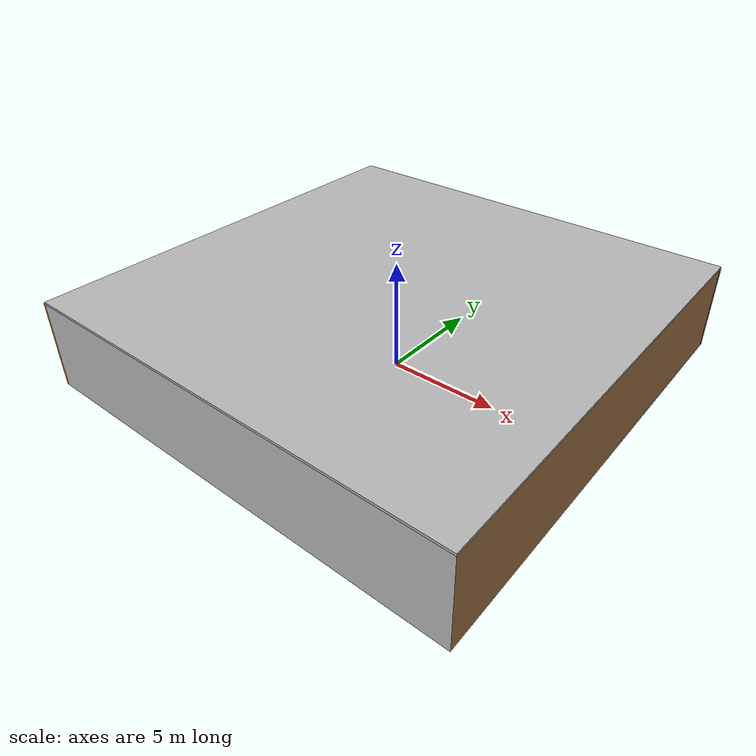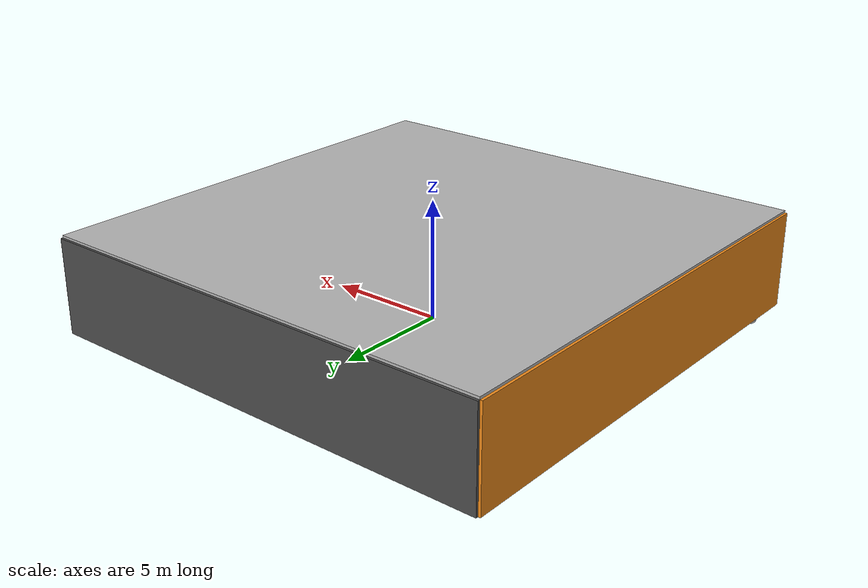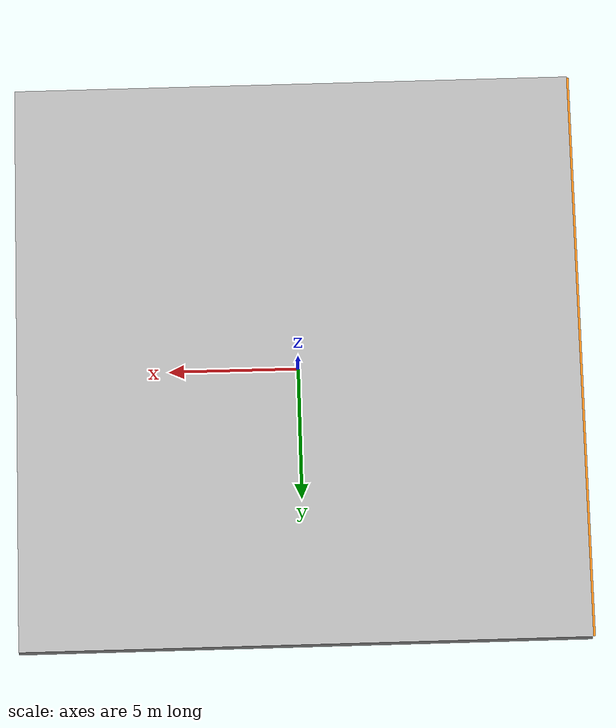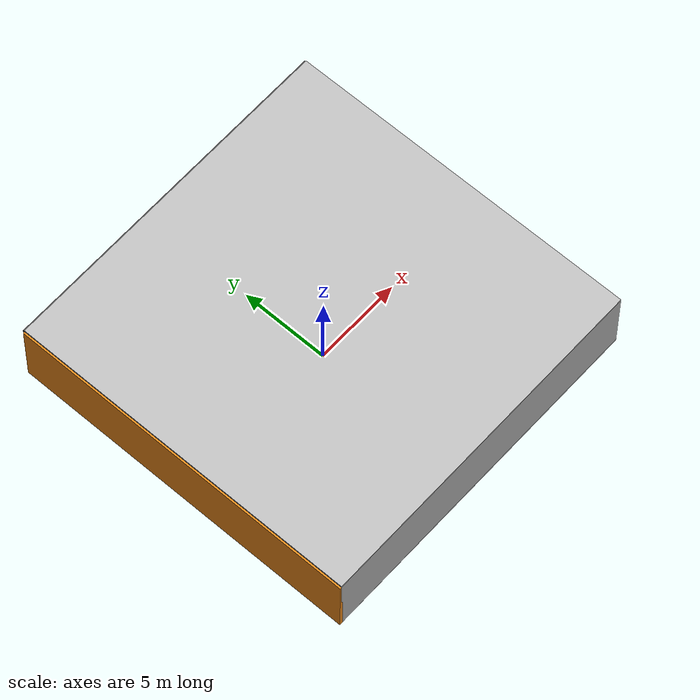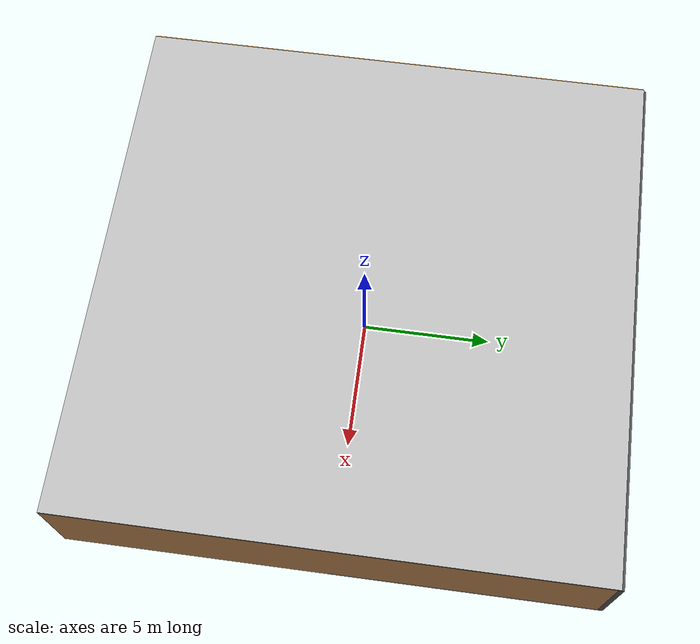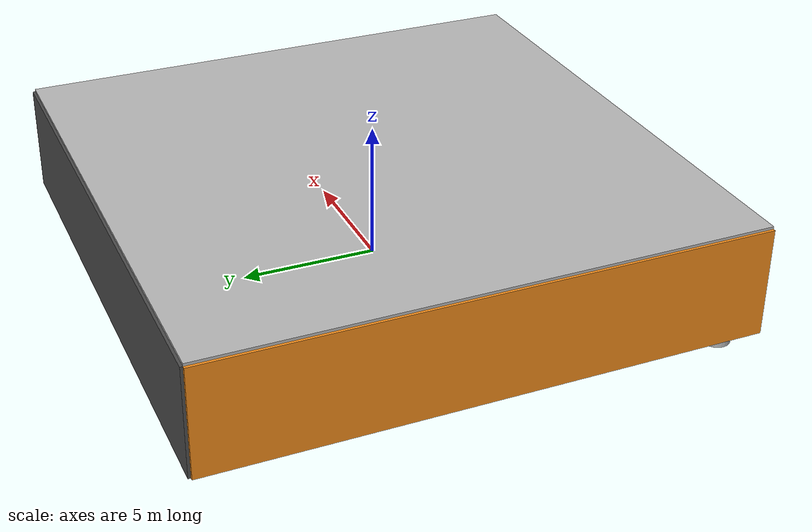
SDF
<sdf version="1.4">
 <world name="default">
  <physics type="ode">
   <max_step_size>0.001</max_step_size>
   <real_time_factor>1</real_time_factor>
   <real_time_update_rate>1000</real_time_update_rate>
   <gravity>0 0 -9.8</gravity>
  </physics>
  <scene><ambient>0.4 0.4 0.4 1</ambient><background>0.7 0.7 0.7 1</background><shadows>1</shadows></scene>
  <model name="Surrounding">
   <static>1</static>
   <link name="Ceiling">
    <collision name="Ceiling_Collision"><geometry><box><size>20 20 0.1</size></box></geometry></collision>
    <visual name="Ceiling_Visual">
     <geometry><box><size>20 20 0.1</size></box></geometry>
     <material>
      <script><uri>file://media/materials/scripts/gazebo.material</uri><name>Gazebo/CloudySky</name></script>
     </material>
    </visual>
    <pose>0 0 4.05 0 0 0</pose>
   </link>
   <link name="Wall_South">
    <collision name="Wall_South_Collision">
     <geometry><box><size>20 0 4</size></box></geometry>
     <pose>0 0 2 0 -0 0</pose>
    </collision>
    <visual name="Wall_South_Visual">
     <pose>0 0 2 0 -0 0</pose>
     <geometry><box><size>20 0 4</size></box></geometry>
     <material>
      <script><uri>file://media/materials/scripts/gazebo.material</uri><name>Gazebo/JointAnchor</name></script>
     </material>
    </visual>
    <velocity_decay><linear>0</linear><angular>0</angular></velocity_decay>
    <pose>0 -10 0 0 -0 0</pose>
   </link>
   <link name="Wall_East">
    <collision name="Wall_21_Collision">
     <geometry><box><size>20 0 4</size></box></geometry>
     <pose>0 0 2 0 -0 0</pose>
    </collision>
    <visual name="Wall_21_Visual">
     <pose>0 0 2 0 -0 0</pose>
     <geometry><box><size>20 0 4</size></box></geometry>
     <material>
      <script><uri>file://media/materials/scripts/gazebo.material</uri><name>Gazebo/WoodPallet</name></script>
     </material>
    </visual>
    <velocity_decay><linear>0</linear><angular>0</angular></velocity_decay>
    <pose>10 0 0 0 -0 1.5708</pose>
   </link>
   <link name="Wall_North">
    <collision name="Wall_22_Collision">
     <geometry><box><size>20 0.2 4</size></box></geometry>
     <pose>0 0 2 0 -0 0</pose>
    </collision>
    <visual name="Wall_22_Visual">
     <pose>0 0 2 0 -0 0</pose>
     <geometry><box><size>20 0.2 4</size></box></geometry>
     <material>
      <script><uri>file://media/materials/scripts/gazebo.material</uri><name>Gazebo/DarkGrey</name></script>
     </material>
    </visual>
    <velocity_decay><linear>0</linear><angular>0</angular></velocity_decay>
    <pose>0 10 0 0 -0 0</pose>
   </link>
   <link name="Wall_West">
    <collision name="Wall_23_Collision">
     <geometry><box><size>20 0.2 4</size></box></geometry>
     <pose>0 0 2 0 -0 0</pose>
    </collision>
    <visual name="Wall_23_Visual">
     <pose>0 0 2 0 -0 0</pose>
     <geometry><box><size>20 0.2 4</size></box></geometry>
     <material>
      <script><uri>file://media/materials/scripts/gazebo.material</uri><name>Gazebo/Orange</name></script>
     </material>
    </visual>
    <velocity_decay><linear>0</linear><angular>0</angular></velocity_decay>
    <pose>-10 0 0 0 0 -1.5708</pose>
   </link>
   <link name="Ground_link">
    <collision name="collision">
     <pose>0 0 .05 0 -0 0</pose>
     <geometry><box><size>20 20 0.1</size></box></geometry>
    </collision>
    <visual name="visual">
     <pose>0 0 .05 0 -0 0</pose>
     <geometry><box><size>20 20 0.1</size></box></geometry>
     <material>
      <script><uri>file://media/materials/scripts/gazebo.material</uri><name>Gazebo/LightOff</name></script>
     </material>
    </visual>
   </link>
   <static>1</static>
  </model>
  <spherical_coordinates>
   <surface_model>EARTH_WGS84</surface_model>
   <latitude_deg>0</latitude_deg>
   <longitude_deg>0</longitude_deg>
   <elevation>0</elevation>
   <heading_deg>0</heading_deg>
  </spherical_coordinates>
  <light name="lightball_0" type="diffuse">
   <diffuse>0.8 0.8 0.8 1</diffuse>
   <specular>0.2 0.2 0.2 1</specular>
   <attenuation>
    <range>100</range>
    <constant>0.7</constant>
    <linear>0.01</linear>
    <quadratic>0.001</quadratic>
   </attenuation>
   <direction>-0.5 0.1 -0.9</direction>
   <pose>5.10659407834 -8.02411648136 2.88706698081 0 0 0</pose>
  </light>
  <light name="lightball_1" type="diffuse">
   <diffuse>0.8 0.8 0.8 1</diffuse>
   <specular>0.2 0.2 0.2 1</specular>
   <attenuation>
    <range>100</range>
    <constant>0.7</constant>
    <linear>0.01</linear>
    <quadratic>0.001</quadratic>
   </attenuation>
   <direction>-0.5 0.1 -0.9</direction>
   <pose>6.75115012357 -8.7666147335 2.37490090564 0 0 0</pose>
  </light>
  <light name="lightball_2" type="diffuse">
   <diffuse>0.8 0.8 0.8 1</diffuse>
   <specular>0.2 0.2 0.2 1</specular>
   <attenuation>
    <range>100</range>
    <constant>0.7</constant>
    <linear>0.01</linear>
    <quadratic>0.001</quadratic>
   </attenuation>
   <direction>-0.5 0.1 -0.9</direction>
   <pose>0.748914025942 -0.723619308567 1.30717610135 0 0 0</pose>
  </light>
  <light name="lightball_3" type="diffuse">
   <diffuse>0.8 0.8 0.8 1</diffuse>
   <specular>0.2 0.2 0.2 1</specular>
   <attenuation>
    <range>100</range>
    <constant>0.7</constant>
    <linear>0.01</linear>
    <quadratic>0.001</quadratic>
   </attenuation>
   <direction>-0.5 0.1 -0.9</direction>
   <pose>1.53543937121 -5.95912830075 2.37511221913 0 0 0</pose>
  </light>
  <light name="lightball_4" type="diffuse">
   <diffuse>0.8 0.8 0.8 1</diffuse>
   <specular>0.2 0.2 0.2 1</specular>
   <attenuation>
    <range>100</range>
    <constant>0.7</constant>
    <linear>0.01</linear>
    <quadratic>0.001</quadratic>
   </attenuation>
   <direction>-0.5 0.1 -0.9</direction>
   <pose>-5.56126232218 -9.24643010339 1.95268204366 0 0 0</pose>
  </light>
  <light name="lightball_5" type="diffuse">
   <diffuse>0.8 0.8 0.8 1</diffuse>
   <specular>0.2 0.2 0.2 1</specular>
   <attenuation>
    <range>100</range>
    <constant>0.7</constant>
    <linear>0.01</linear>
    <quadratic>0.001</quadratic>
   </attenuation>
   <direction>-0.5 0.1 -0.9</direction>
   <pose>0.933703457035 8.09430378549 2.99326923022 0 0 0</pose>
  </light>
  <light name="lightball_6" type="diffuse">
   <diffuse>0.8 0.8 0.8 1</diffuse>
   <specular>0.2 0.2 0.2 1</specular>
   <attenuation>
    <range>100</range>
    <constant>0.7</constant>
    <linear>0.01</linear>
    <quadratic>0.001</quadratic>
   </attenuation>
   <direction>-0.5 0.1 -0.9</direction>
   <pose>4.71611324683 -1.22113870333 2.55148650712 0 0 0</pose>
  </light>
  <include>
   <uri>model://textured_shapes</uri>
   <pose>-8.00253492528 -8.00010225914 0 0 0 2.17014600264</pose>
  </include>
  <include><uri>model://cabinet</uri><pose>-6.87597794293 -0.538022334162 0 0 0 1.82380580813</pose></include>
  <include><uri>model://cabinet</uri><pose>-5.57756793127 0.776361882174 0 0 0 0.355952104359</pose></include>
  <include><uri>model://cabinet</uri><pose>-1.58542697537 -0.803693259747 0 0 0 0.537466253974</pose></include>
  <include>
   <uri>model://construction_cone</uri>
   <pose>3.64064284989 1.9353842195 0 0 0 2.41392162872</pose>
  </include>
  <include>
   <uri>model://textured_shapes</uri>
   <pose>3.98251293953 3.43495791748 0 0 0 1.05318073789</pose>
  </include>
  <include>
   <uri>model://construction_cone</uri>
   <pose>6.30565438 -7.50860414043 0 0 0 2.87091936927</pose>
  </include>
  <include><uri>model://cabinet</uri><pose>7.22736165019 2.26262242045 0 0 0 0.606914219013</pose></include>
  <include>
   <uri>model://robocup_3Dsim_goal</uri>
   <pose>7.87638901772 3.74046171595 0 0 0 0.842500229356</pose>
  </include>
 </world>
</sdf>

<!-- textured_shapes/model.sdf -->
<sdf version="1.6">
  <model name="textured_shapes">
    <pose>0 0 0.5 0 0 0</pose>
    <link name="box">
      <pose>0 -1.5 0 0 0 0</pose>
      <collision name="collision">
        <geometry>
          <box>
            <size>1 1 1</size>
          </box>
        </geometry>
      </collision>
      <visual name="visual">
        <geometry>
          <box>
            <size>1 1 1</size>
          </box>
        </geometry>
        <material>
          <script>
            <uri>model://../model_source/models/textured_shapes/materials/scripts</uri>
            <uri>model://../model_source/models/textured_shapes/materials/textures</uri>
            <name>TexturedShape/Squares</name>
          </script>
        </material>
      </visual>
    </link>
    <link name="sphere">
      <collision name="collision">
        <geometry>
          <sphere>
            <radius>0.5</radius>
          </sphere>
        </geometry>
      </collision>
      <visual name="visual">
        <geometry>
          <sphere>
            <radius>0.5</radius>
          </sphere>
        </geometry>
        <material>
          <script>
            <uri>model://../model_source/models/textured_shapes/materials/scripts</uri>
            <uri>model://../model_source/models/textured_shapes/materials/textures</uri>
            <name>TexturedShape/Squares</name>
          </script>
        </material>
      </visual>
    </link>
    <link name="cylinder">
      <pose>0 1.5 0 0 0 0</pose>
      <collision name="collision">
        <geometry>
          <cylinder>
            <radius>0.5</radius>
            <length>1</length>
          </cylinder>
        </geometry>
      </collision>
      <visual name="visual">
        <geometry>
          <cylinder>
            <radius>0.5</radius>
            <length>1</length>
          </cylinder>
        </geometry>
        <material>
          <script>
            <uri>model://../model_source/models/textured_shapes/materials/scripts</uri>
            <uri>model://../model_source/models/textured_shapes/materials/textures</uri>
            <name>TexturedShape/Squares</name>
          </script>
        </material>
      </visual>
    </link>
  </model>
</sdf>

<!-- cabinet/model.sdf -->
<sdf version="1.5">
  <model name="cabinet">
    <static>true</static>
    <link name="cabinet_bottom_plate">
      <inertial>
        <pose>0 0 -1 0 0 0</pose>
        <inertia>
          <ixx>2.050000</ixx>
          <ixy>0</ixy>
          <ixz>0</ixz>
          <iyy>2.050000</iyy>
          <iyz>0</iyz>
          <izz>2.050000</izz>
        </inertia>
        <mass>25.000000</mass>
      </inertial>
      <collision name="cabinet_bottom_plate_geom">
        <pose>0 0 0.010000 0 0 0</pose>
        <geometry>
          <box>
            <size>0.450000 0.450000 0.020000</size>
          </box>
        </geometry>
      </collision>
      <visual name="cabinet_bottom_plate_geom_visual">
        <pose>0 0 0.010000 0 0 0</pose>
        <geometry>
          <box>
            <size>0.450000 0.450000 0.020000</size>
          </box>
        </geometry>
        <material>
          <script>
            <uri>model://media/materials/scripts/gazebo.material</uri>
            <name>Gazebo/Wood</name>
          </script>
        </material>
      </visual>
      <collision name="cabinet_bottom_plate_geom_cabinet_back_plate">
        <pose>0.235000 0 0.510000 0 0 0</pose>
        <geometry>
          <box>
            <size>0.020000 0.450000 1.020000</size>
          </box>
        </geometry>
      </collision>
      <visual name="cabinet_bottom_plate_geom_cabinet_back_plate_visual">
        <pose>0.235000 0 0.510000 0 0 0</pose>
        <geometry>
          <box>
            <size>0.020000 0.450000 1.020000</size>
          </box>
        </geometry>
        <material>
          <script>
            <uri>model://media/materials/scripts/gazebo.material</uri>
            <name>Gazebo/Wood</name>
          </script>
        </material>
      </visual>
      <collision name="cabinet_bottom_plate_geom_cabinet_left_plate">
        <pose>0 0.235000 0.510000 0 0 0</pose>
        <geometry>
          <box>
            <size>0.450000 0.020000 1.020000</size>
          </box>
        </geometry>
      </collision>
      <visual name="cabinet_bottom_plate_geom_cabinet_left_plate_visual">
        <pose>0 0.235000 0.510000 0 0 0</pose>
        <geometry>
          <box>
            <size>0.450000 0.020000 1.020000</size>
          </box>
        </geometry>
        <material>
          <script>
            <uri>model://media/materials/scripts/gazebo.material</uri>
            <name>Gazebo/Wood</name>
          </script>
        </material>
      </visual>
      <collision name="cabinet_bottom_plate_geom_cabinet_middle_plate">
        <pose>0 0 0.510000 0 0 0</pose>
        <geometry>
          <box>
            <size>0.450000 0.450000 0.020000</size>
          </box>
        </geometry>
      </collision>
      <visual name="cabinet_bottom_plate_geom_cabinet_middle_plate_visual">
        <pose>0 0 0.510000 0 0 0</pose>
        <geometry>
          <box>
            <size>0.450000 0.450000 0.020000</size>
          </box>
        </geometry>
        <material>
          <script>
            <uri>model://media/materials/scripts/gazebo.material</uri>
            <name>Gazebo/Wood</name>
          </script>
        </material>
      </visual>
      <collision name="cabinet_bottom_plate_geom_cabinet_right_plate">
        <pose>0 -0.235000 0.510000 0 0 0</pose>
        <geometry>
          <box>
            <size>0.450000 0.020000 1.020000</size>
          </box>
        </geometry>
      </collision>
      <visual name="cabinet_bottom_plate_geom_cabinet_right_plate_visual">
        <pose>0 -0.235000 0.510000 0 0 0</pose>
        <geometry>
          <box>
            <size>0.450000 0.020000 1.020000</size>
          </box>
        </geometry>
        <material>
          <script>
            <uri>model://media/materials/scripts/gazebo.material</uri>
            <name>Gazebo/Wood</name>
          </script>
        </material>
      </visual>
      <collision name="cabinet_bottom_plate_geom_cabinet_top_plate">
        <pose>0 0 1.010000 0 0 0</pose>
        <geometry>
          <box>
            <size>0.450000 0.450000 0.020000</size>
          </box>
        </geometry>
      </collision>
      <visual name="cabinet_bottom_plate_geom_cabinet_top_plate_visual">
        <pose>0 0 1.010000 0 0 0</pose>
        <geometry>
          <box>
            <size>0.450000 0.450000 0.020000</size>
          </box>
        </geometry>
        <material>
          <script>
            <uri>model://media/materials/scripts/gazebo.material</uri>
            <name>Gazebo/Wood</name>
          </script>
        </material>
      </visual>
    </link>
  </model>
</sdf>

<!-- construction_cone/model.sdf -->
<sdf version="1.5">
  <model name="Construction Cone">
    <link name="link">
      <collision name="collision">
        <geometry>
          <mesh>
            <scale>10 10 10</scale>
            <uri>file://isr-testbed/construction_cone/meshes/construction_cone.dae</uri>
          </mesh>
        </geometry>
      </collision>
      <visual name="visual">
        <geometry>
          <mesh>
            <scale>10 10 10</scale>
            <uri>file://isr-testbed/construction_cone/meshes/construction_cone.dae</uri>
          </mesh>
        </geometry>
      </visual>
    </link>
  </model>
</sdf>

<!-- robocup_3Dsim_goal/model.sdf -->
<sdf version="1.5">
  <model name="robocup_3d_goal">
    <static>true</static>
    <link name="left_post">
      <pose>0 1.05 0.45 0 0 0</pose>
      <collision name="collision">
        <geometry>
          <cylinder>
            <radius>0.05</radius>
            <length>0.9</length>
          </cylinder>
        </geometry>
      </collision>
      <visual name="visual">
        <geometry>
          <cylinder>
            <radius>0.05</radius>
            <length>0.9</length>
          </cylinder>
        </geometry>
        <material>
          <script>
            <uri>file://media/materials/scripts/gazebo.material</uri>
            <name>Gazebo/ZincYellow</name>
          </script>
        </material>
      </visual>
    </link>
    <link name="left_support_horiz_lower">
      <pose>0.30 1.05 0.01 0 0 0</pose>
      <collision name="collision">
        <geometry>
          <box>
            <size>0.50 0.02 0.02</size>
          </box>
        </geometry>
      </collision>
      <visual name="visual">
        <geometry>
          <box>
            <size>0.50 0.02 0.02</size>
          </box>
        </geometry>
        <material>
          <script>
            <uri>file://media/materials/scripts/gazebo.material</uri>
            <name>Gazebo/White</name>
          </script>
        </material>
      </visual>
    </link>
    <link name="left_support_horiz_upper">
      <pose>0.30 1.05 0.79 0 0 0</pose>
      <collision name="collision">
        <geometry>
          <box>
            <size>0.50 0.02 0.02</size>
          </box>
        </geometry>
      </collision>
      <visual name="visual">
        <geometry>
          <box>
            <size>0.50 0.02 0.02</size>
          </box>
        </geometry>
        <material>
          <script>
            <uri>file://media/materials/scripts/gazebo.material</uri>
            <name>Gazebo/White</name>
          </script>
        </material>
      </visual>
    </link>
    <link name="left_support_vertical">
      <pose>0.56 1.05 0.4 0 1.5708 0</pose>
      <collision name="collision">
        <geometry>
          <box>
            <size>0.80 0.02 0.02</size>
          </box>
        </geometry>
      </collision>
      <visual name="visual">
        <geometry>
          <box>
            <size>0.80 0.02 0.02</size>
          </box>
        </geometry>
        <material>
          <script>
            <uri>file://media/materials/scripts/gazebo.material</uri>
            <name>Gazebo/White</name>
          </script>
        </material>
      </visual>
    </link>
    <link name="right_support_horiz_lower">
      <pose>0.30 -1.05 0.01 0 0 0</pose>
      <collision name="collision">
        <geometry>
          <box>
            <size>0.50 0.02 0.02</size>
          </box>
        </geometry>
      </collision>
      <visual name="visual">
        <geometry>
          <box>
            <size>0.50 0.02 0.02</size>
          </box>
        </geometry>
        <material>
          <script>
            <uri>file://media/materials/scripts/gazebo.material</uri>
            <name>Gazebo/White</name>
          </script>
        </material>
      </visual>
    </link>
    <link name="right_support_horiz_upper">
      <pose>0.30 -1.05 0.79 0 0 0</pose>
      <collision name="collision">
        <geometry>
          <box>
            <size>0.50 0.02 0.02</size>
          </box>
        </geometry>
      </collision>
      <visual name="visual">
        <geometry>
          <box>
            <size>0.50 0.02 0.02</size>
          </box>
        </geometry>
        <material>
          <script>
            <uri>file://media/materials/scripts/gazebo.material</uri>
            <name>Gazebo/White</name>
          </script>
        </material>
      </visual>
    </link>
    <link name="right_support_vertical">
      <pose>0.56 -1.05 0.4 0 1.5708 0</pose>
      <collision name="collision">
        <geometry>
          <box>
            <size>0.80 0.02 0.02</size>
          </box>
        </geometry>
      </collision>
      <visual name="visual">
        <geometry>
          <box>
            <size>0.80 0.02 0.02</size>
          </box>
        </geometry>
        <material>
          <script>
            <uri>file://media/materials/scripts/gazebo.material</uri>
            <name>Gazebo/White</name>
          </script>
        </material>
      </visual>
    </link>
    <link name="center_support_horiz_lower">
      <pose>0.56 0 0.01 0 1.5708 0</pose>
      <collision name="collision">
        <geometry>
          <box>
            <size>0.02 2.08 0.02</size>
          </box>
        </geometry>
      </collision>
      <visual name="visual">
        <geometry>
          <box>
            <size>0.02 2.08 0.02</size>
          </box>
        </geometry>
        <material>
          <script>
            <uri>file://media/materials/scripts/gazebo.material</uri>
            <name>Gazebo/White</name>
          </script>
        </material>
      </visual>
    </link>
    <link name="center_support_horiz_upper">
      <pose>0.56 0 0.79 0 1.5708 0</pose>
      <collision name="collision">
        <geometry>
          <box>
            <size>0.02 2.08 0.02</size>
          </box>
        </geometry>
      </collision>
      <visual name="visual">
        <geometry>
          <box>
            <size>0.02 2.08 0.02</size>
          </box>
        </geometry>
        <material>
          <script>
            <uri>file://media/materials/scripts/gazebo.material</uri>
            <name>Gazebo/White</name>
          </script>
        </material>
      </visual>
    </link>
    <link name="right_post">
      <pose>0 -1.05 0.45 0 0 0</pose>
      <collision name="collision">
        <geometry>
          <cylinder>
            <radius>0.05</radius>
            <length>0.9</length>
          </cylinder>
        </geometry>
      </collision>
      <visual name="visual">
        <geometry>
          <cylinder>
            <radius>0.05</radius>
            <length>0.9</length>
          </cylinder>
        </geometry>
        <material>
          <script>
            <uri>file://media/materials/scripts/gazebo.material</uri>
            <name>Gazebo/ZincYellow</name>
          </script>
        </material>
      </visual>
    </link>
    <link name="crossbar">
      <pose>0 0 0.85 1.57 1.57 0</pose>
      <collision name="collision">
        <geometry>
          <cylinder>
            <radius>0.05</radius>
            <length>2.0</length>
          </cylinder>
        </geometry>
      </collision>
      <visual name="visual">
        <geometry>
          <cylinder>
            <radius>0.05</radius>
            <length>2.0</length>
          </cylinder>
        </geometry>
        <material>
          <script>
            <uri>file://media/materials/scripts/gazebo.material</uri>
            <name>Gazebo/ZincYellow</name>
          </script>
        </material>
      </visual>
    </link>
    <link name="center_net">
      <pose>0.56 0 0.40 0 0 0</pose>
      <collision name="collision">
        <geometry>
          <box>
            <size>0.01 2.1 0.80</size>
          </box>
        </geometry>
      </collision>
      <visual name="visual">
        <geometry>
          <box>
            <size>0.01 2.1 0.80</size>
          </box>
        </geometry>
        <material>
          <script>
            <uri>model://../model_source/models/robocup09_spl_field/materials/scripts/</uri>
            <uri>model://../model_source/models/robocup09_spl_field/materials/textures/</uri>
            <name>RoboCup/Net</name>
          </script>
        </material>
      </visual>
    </link>
    <link name="left_net">
      <pose>0.30 1.05 0.40 0 0 0</pose>
      <collision name="collision">
        <geometry>
          <box>
            <size>0.50 0.01 0.76</size>
          </box>
        </geometry>
      </collision>
      <visual name="visual">
        <geometry>
          <box>
            <size>0.50 0.01 0.76</size>
          </box>
        </geometry>
        <material>
          <script>
            <uri>model://../model_source/models/robocup09_spl_field/materials/scripts/</uri>
            <uri>model://../model_source/models/robocup09_spl_field/materials/textures/</uri>
            <name>RoboCup/Net</name>
          </script>
        </material>
      </visual>
    </link>
    <link name="right_net">
      <pose>0.30 -1.05 0.40 0 0 0</pose>
      <collision name="collision">
        <geometry>
          <box>
            <size>0.50 0.01 0.76</size>
          </box>
        </geometry>
      </collision>
      <visual name="visual">
        <geometry>
          <box>
            <size>0.50 0.01 0.76</size>
          </box>
        </geometry>
        <material>
          <script>
            <uri>model://../model_source/models/robocup09_spl_field/materials/scripts/</uri>
            <uri>model://../model_source/models/robocup09_spl_field/materials/textures/</uri>
            <name>RoboCup/Net</name>
          </script>
        </material>
      </visual>
    </link>
  </model>
</sdf>
